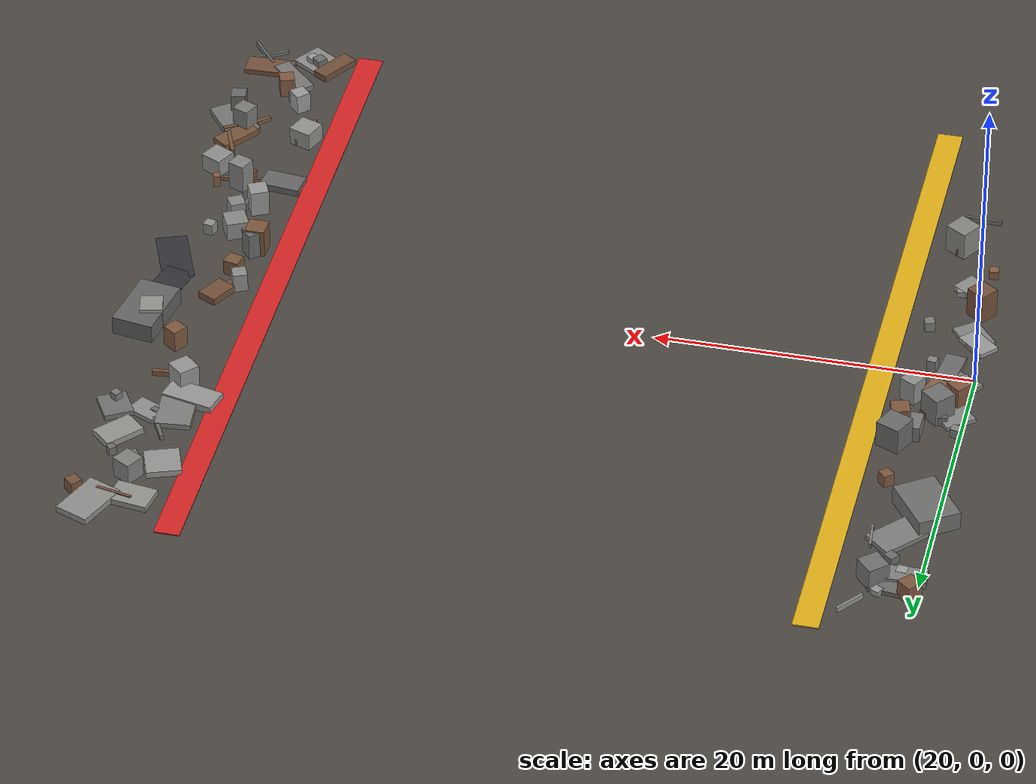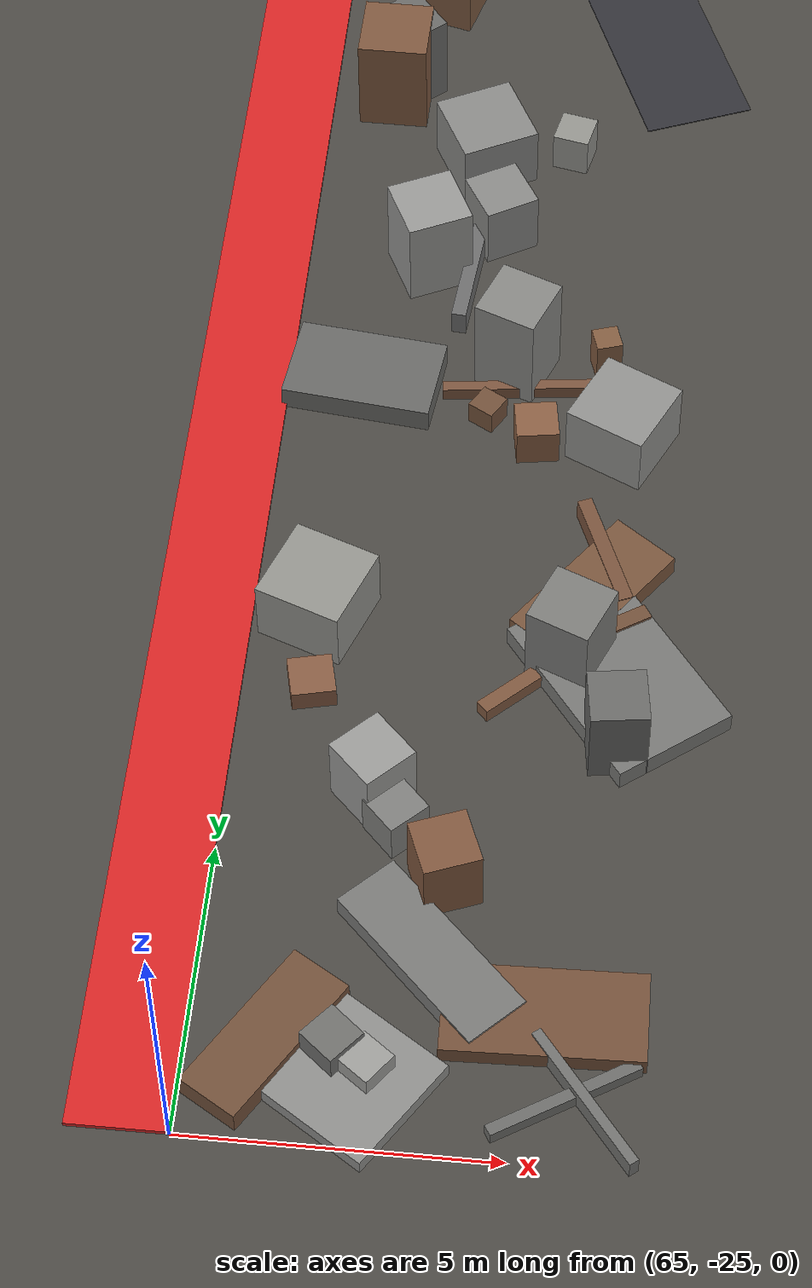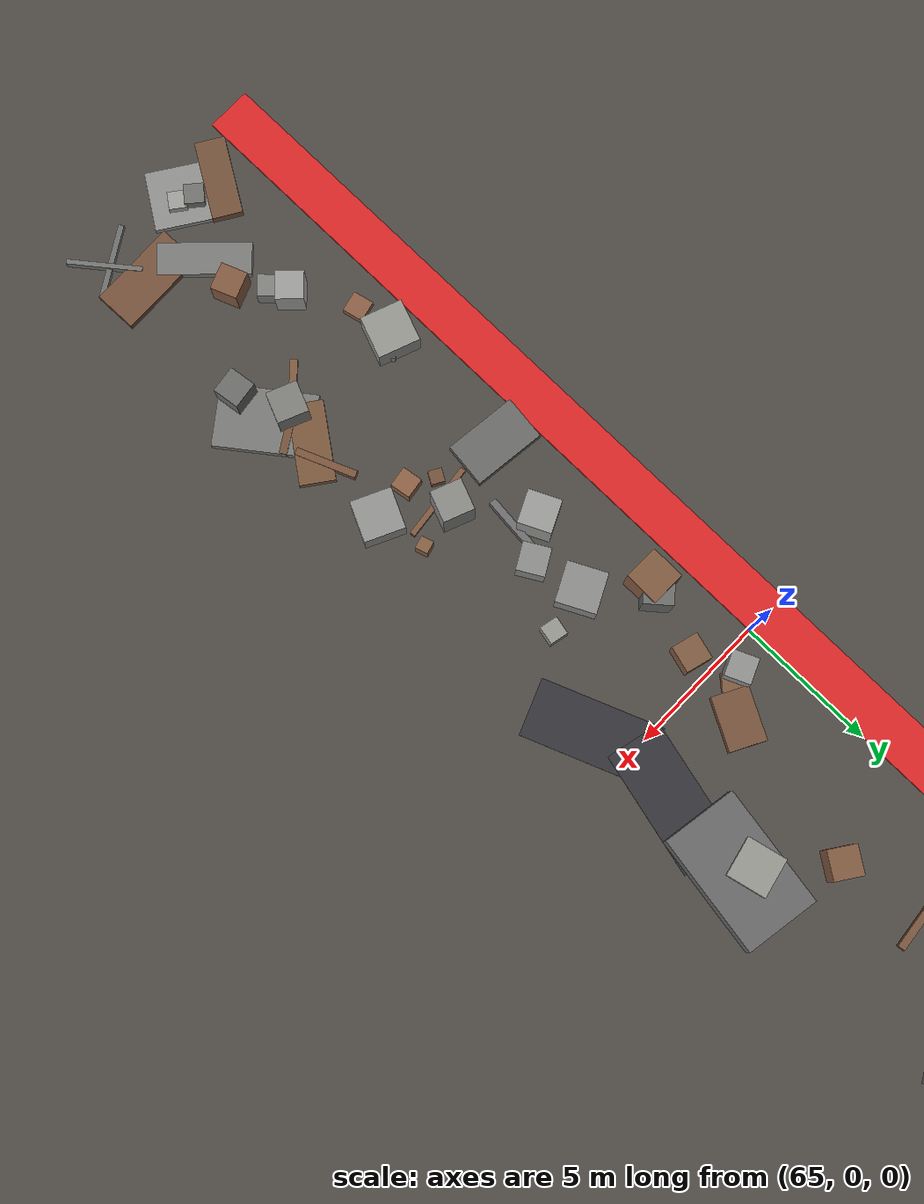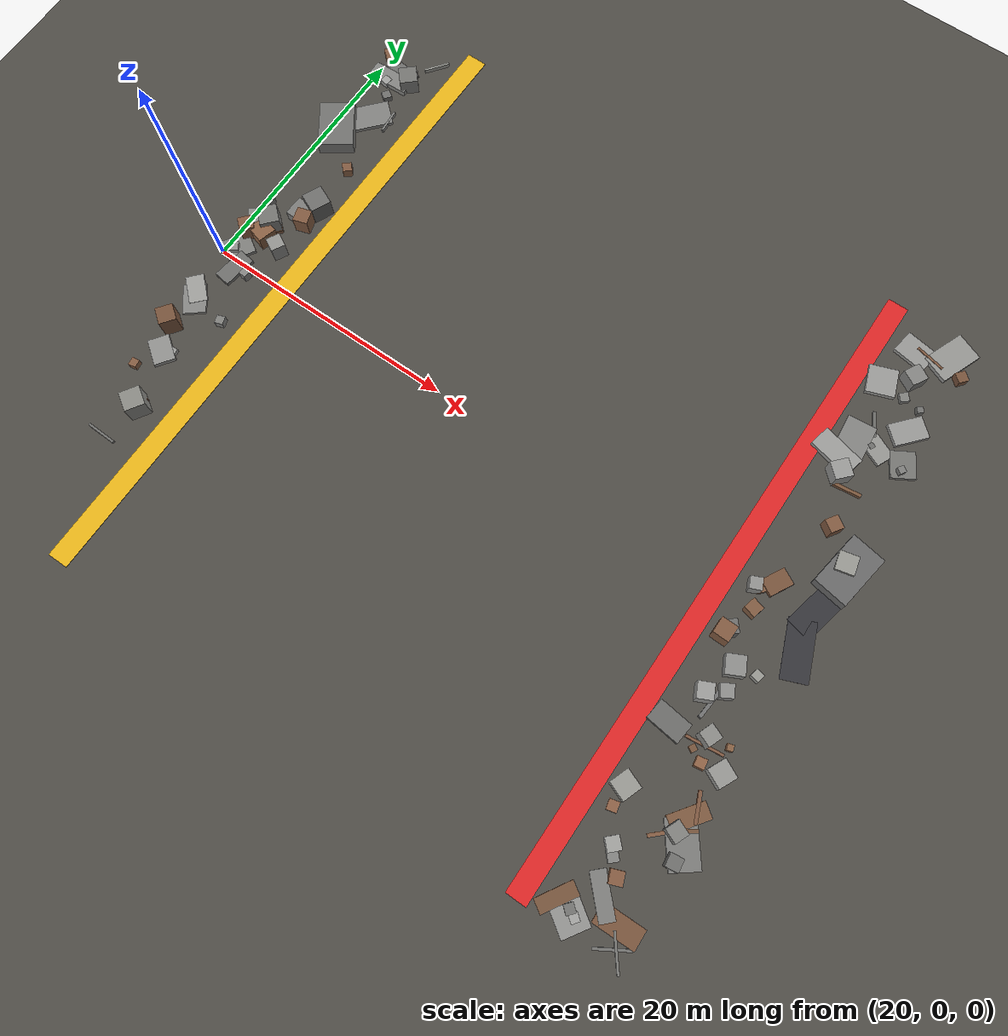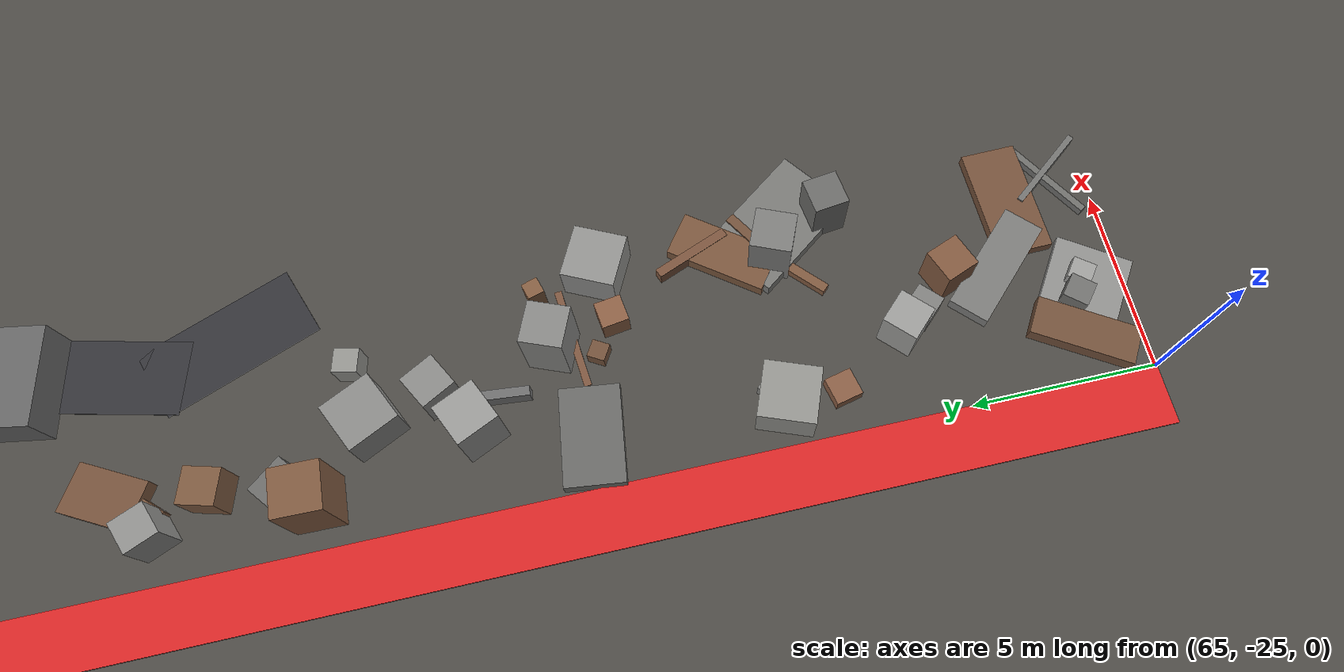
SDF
<sdf version="1.6">
 <world name="navitas_arena">
  <model name="ground_plane">
   <static>true</static>
   <link name="link">
    <collision name="collision">
     <geometry><plane><normal>0 0 1</normal><size>400 400</size></plane></geometry>
     <surface><friction><ode><mu>0.800</mu><mu2>0.800</mu2></ode></friction></surface>
    </collision>
    <visual name="visual">
     <cast_shadows>false</cast_shadows>
     <geometry><plane><normal>0 0 1</normal><size>400 400</size></plane></geometry>
     <material><ambient>0.300 0.290 0.270 1</ambient><diffuse>0.300 0.290 0.270 1</diffuse></material>
    </visual>
   </link>
  </model>
  <model name="brd_orta_E">
   <static>true</static>
   <pose>25.800 0.000 0.040 0 0 0.000</pose>
   <link name="link">
    <collision name="col"><geometry><box><size>1.600 50.000 0.080</size></box></geometry></collision>
    <visual name="vis">
     <geometry><box><size>1.600 50.000 0.080</size></box></geometry>
     <material><ambient>0.90 0.70 0.10 1</ambient><diffuse>0.90 0.70 0.10 1</diffuse></material>
    </visual>
   </link>
  </model>
  <model name="blk_orta_3_2_4">
   <static>true</static>
   <pose>20.731 13.316 0.600 0 0 2.175</pose>
   <link name="link">
    <collision name="col"><geometry><box><size>3.786 2.715 1.200</size></box></geometry></collision>
    <visual name="vis">
     <geometry><box><size>3.786 2.715 1.200</size></box></geometry>
     <material><ambient>0.44 0.44 0.43 1</ambient><diffuse>0.44 0.44 0.43 1</diffuse></material>
    </visual>
   </link>
  </model>
  <model name="deb_orta_2">
   <static>true</static>
   <pose>23.109 5.786 0.507 0 0 1.541</pose>
   <link name="link">
    <collision name="col"><geometry><box><size>1.554 1.554 1.015</size></box></geometry></collision>
    <visual name="vis">
     <geometry><box><size>1.554 1.554 1.015</size></box></geometry>
     <material><ambient>0.48 0.48 0.47 1</ambient><diffuse>0.48 0.48 0.47 1</diffuse></material>
    </visual>
   </link>
  </model>
  <model name="deb_orta_3">
   <static>true</static>
   <pose>23.013 -13.170 0.921 0 0 1.003</pose>
   <link name="link">
    <collision name="col"><geometry><box><size>1.516 1.516 1.842</size></box></geometry></collision>
    <visual name="vis">
     <geometry><box><size>1.516 1.516 1.842</size></box></geometry>
     <material><ambient>0.53 0.53 0.51 1</ambient><diffuse>0.53 0.53 0.51 1</diffuse></material>
    </visual>
   </link>
  </model>
  <model name="deb_orta_9">
   <static>true</static>
   <pose>21.147 19.111 0.240 0 0 1.437</pose>
   <link name="link">
    <collision name="col"><geometry><box><size>0.652 0.652 0.481</size></box></geometry></collision>
    <visual name="vis">
     <geometry><box><size>0.652 0.652 0.481</size></box></geometry>
     <material><ambient>0.62 0.62 0.61 1</ambient><diffuse>0.62 0.62 0.61 1</diffuse></material>
    </visual>
   </link>
  </model>
  <model name="deb_orta_11">
   <static>true</static>
   <pose>20.646 2.398 0.797 0 0 2.435</pose>
   <link name="link">
    <collision name="col"><geometry><box><size>1.085 1.085 1.594</size></box></geometry></collision>
    <visual name="vis">
     <geometry><box><size>1.085 1.085 1.594</size></box></geometry>
     <material><ambient>0.51 0.35 0.25 1</ambient><diffuse>0.51 0.35 0.25 1</diffuse></material>
    </visual>
   </link>
  </model>
  <model name="deb_orta_24">
   <static>true</static>
   <pose>21.686 3.828 0.906 0 0 0.840</pose>
   <link name="link">
    <collision name="col"><geometry><box><size>1.466 1.466 1.813</size></box></geometry></collision>
    <visual name="vis">
     <geometry><box><size>1.466 1.466 1.813</size></box></geometry>
     <material><ambient>0.45 0.45 0.44 1</ambient><diffuse>0.45 0.45 0.44 1</diffuse></material>
    </visual>
   </link>
  </model>
  <model name="deb_orta_26">
   <static>true</static>
   <pose>22.035 15.796 0.152 0 0 0.841</pose>
   <link name="link">
    <collision name="col"><geometry><box><size>3.159 2.038 0.305</size></box></geometry></collision>
    <visual name="vis">
     <geometry><box><size>3.159 2.038 0.305</size></box></geometry>
     <material><ambient>0.50 0.50 0.49 1</ambient><diffuse>0.50 0.50 0.49 1</diffuse></material>
    </visual>
   </link>
  </model>
  <model name="deb_orta_30">
   <static>true</static>
   <pose>21.866 2.751 0.697 0 0 2.855</pose>
   <link name="link">
    <collision name="col"><geometry><box><size>1.441 1.441 1.394</size></box></geometry></collision>
    <visual name="vis">
     <geometry><box><size>1.441 1.441 1.394</size></box></geometry>
     <material><ambient>0.54 0.38 0.27 1</ambient><diffuse>0.54 0.38 0.27 1</diffuse></material>
    </visual>
   </link>
  </model>
  <model name="deb_orta_39">
   <static>true</static>
   <pose>22.169 -16.232 0.156 0 0 3.118</pose>
   <link name="link">
    <collision name="col"><geometry><box><size>2.276 0.176 0.313</size></box></geometry></collision>
    <visual name="vis">
     <geometry><box><size>2.276 0.176 0.313</size></box></geometry>
     <material><ambient>0.44 0.44 0.43 1</ambient><diffuse>0.44 0.44 0.43 1</diffuse></material>
    </visual>
   </link>
  </model>
  <model name="deb_orta_40">
   <static>true</static>
   <pose>21.370 4.345 0.272 0 0 0.246</pose>
   <link name="link">
    <collision name="col"><geometry><box><size>0.687 0.687 0.543</size></box></geometry></collision>
    <visual name="vis">
     <geometry><box><size>0.687 0.687 0.543</size></box></geometry>
     <material><ambient>0.41 0.41 0.40 1</ambient><diffuse>0.41 0.41 0.40 1</diffuse></material>
    </visual>
   </link>
  </model>
  <model name="deb_orta_59">
   <static>true</static>
   <pose>22.299 21.077 0.183 0 0 1.073</pose>
   <link name="link">
    <collision name="col"><geometry><box><size>0.563 0.563 0.366</size></box></geometry></collision>
    <visual name="vis">
     <geometry><box><size>0.563 0.563 0.366</size></box></geometry>
     <material><ambient>0.60 0.60 0.59 1</ambient><diffuse>0.60 0.60 0.59 1</diffuse></material>
    </visual>
   </link>
  </model>
  <model name="deb_orta_62">
   <static>true</static>
   <pose>20.760 -6.800 0.960 0 0 2.503</pose>
   <link name="link">
    <collision name="col"><geometry><box><size>1.315 1.315 1.919</size></box></geometry></collision>
    <visual name="vis">
     <geometry><box><size>1.315 1.315 1.919</size></box></geometry>
     <material><ambient>0.46 0.32 0.23 1</ambient><diffuse>0.46 0.32 0.23 1</diffuse></material>
    </visual>
   </link>
  </model>
  <model name="deb_orta_70">
   <static>true</static>
   <pose>20.785 0.955 0.149 0 0 1.006</pose>
   <link name="link">
    <collision name="col"><geometry><box><size>2.122 1.785 0.298</size></box></geometry></collision>
    <visual name="vis">
     <geometry><box><size>2.122 1.785 0.298</size></box></geometry>
     <material><ambient>0.49 0.49 0.48 1</ambient><diffuse>0.49 0.49 0.48 1</diffuse></material>
    </visual>
   </link>
  </model>
  <model name="deb_orta_78">
   <static>true</static>
   <pose>20.387 21.003 0.596 0 0 2.450</pose>
   <link name="link">
    <collision name="col"><geometry><box><size>1.042 1.042 1.192</size></box></geometry></collision>
    <visual name="vis">
     <geometry><box><size>1.042 1.042 1.192</size></box></geometry>
     <material><ambient>0.50 0.35 0.25 1</ambient><diffuse>0.50 0.35 0.25 1</diffuse></material>
    </visual>
   </link>
  </model>
  <model name="deb_orta_82">
   <static>true</static>
   <pose>23.659 22.467 0.172 0 0 0.914</pose>
   <link name="link">
    <collision name="col"><geometry><box><size>2.012 0.158 0.345</size></box></geometry></collision>
    <visual name="vis">
     <geometry><box><size>2.012 0.158 0.345</size></box></geometry>
     <material><ambient>0.58 0.58 0.56 1</ambient><diffuse>0.58 0.58 0.56 1</diffuse></material>
    </visual>
   </link>
  </model>
  <model name="deb_orta_88">
   <static>true</static>
   <pose>23.746 5.304 0.779 0 0 1.870</pose>
   <link name="link">
    <collision name="col"><geometry><box><size>1.131 1.131 1.558</size></box></geometry></collision>
    <visual name="vis">
     <geometry><box><size>1.131 1.131 1.558</size></box></geometry>
     <material><ambient>0.50 0.35 0.25 1</ambient><diffuse>0.50 0.35 0.25 1</diffuse></material>
    </visual>
   </link>
  </model>
  <model name="deb_orta_90">
   <static>true</static>
   <pose>23.808 6.964 0.861 0 0 2.720</pose>
   <link name="link">
    <collision name="col"><geometry><box><size>1.594 1.594 1.721</size></box></geometry></collision>
    <visual name="vis">
     <geometry><box><size>1.594 1.594 1.721</size></box></geometry>
     <material><ambient>0.43 0.43 0.42 1</ambient><diffuse>0.43 0.43 0.42 1</diffuse></material>
    </visual>
   </link>
  </model>
  <model name="deb_orta_91">
   <static>true</static>
   <pose>23.073 -12.832 0.253 0 0 0.386</pose>
   <link name="link">
    <collision name="col"><geometry><box><size>0.725 0.725 0.507</size></box></geometry></collision>
    <visual name="vis">
     <geometry><box><size>0.725 0.725 0.507</size></box></geometry>
     <material><ambient>0.47 0.33 0.24 1</ambient><diffuse>0.47 0.33 0.24 1</diffuse></material>
    </visual>
   </link>
  </model>
  <model name="deb_orta_96">
   <static>true</static>
   <pose>21.542 -8.876 0.193 0 0 2.518</pose>
   <link name="link">
    <collision name="col"><geometry><box><size>2.052 1.584 0.385</size></box></geometry></collision>
    <visual name="vis">
     <geometry><box><size>2.052 1.584 0.385</size></box></geometry>
     <material><ambient>0.56 0.56 0.55 1</ambient><diffuse>0.56 0.56 0.55 1</diffuse></material>
    </visual>
   </link>
  </model>
  <model name="deb_orta_102">
   <static>true</static>
   <pose>21.289 19.501 0.235 0 0 0.040</pose>
   <link name="link">
    <collision name="col"><geometry><box><size>3.375 1.295 0.470</size></box></geometry></collision>
    <visual name="vis">
     <geometry><box><size>3.375 1.295 0.470</size></box></geometry>
     <material><ambient>0.51 0.51 0.50 1</ambient><diffuse>0.51 0.51 0.50 1</diffuse></material>
    </visual>
   </link>
  </model>
  <model name="deb_orta_105">
   <static>true</static>
   <pose>20.610 0.651 0.307 0 0 2.189</pose>
   <link name="link">
    <collision name="col"><geometry><box><size>0.738 0.738 0.615</size></box></geometry></collision>
    <visual name="vis">
     <geometry><box><size>0.738 0.738 0.615</size></box></geometry>
     <material><ambient>0.56 0.56 0.55 1</ambient><diffuse>0.56 0.56 0.55 1</diffuse></material>
    </visual>
   </link>
  </model>
  <model name="deb_orta_130">
   <static>true</static>
   <pose>20.641 -10.792 0.278 0 0 0.138</pose>
   <link name="link">
    <collision name="col"><geometry><box><size>0.603 0.603 0.555</size></box></geometry></collision>
    <visual name="vis">
     <geometry><box><size>0.603 0.603 0.555</size></box></geometry>
     <material><ambient>0.52 0.36 0.26 1</ambient><diffuse>0.52 0.36 0.26 1</diffuse></material>
    </visual>
   </link>
  </model>
  <model name="deb_orta_131">
   <static>true</static>
   <pose>23.665 -4.650 0.327 0 0 1.894</pose>
   <link name="link">
    <collision name="col"><geometry><box><size>0.639 0.639 0.653</size></box></geometry></collision>
    <visual name="vis">
     <geometry><box><size>0.639 0.639 0.653</size></box></geometry>
     <material><ambient>0.49 0.49 0.48 1</ambient><diffuse>0.49 0.49 0.48 1</diffuse></material>
    </visual>
   </link>
  </model>
  <model name="deb_orta_161">
   <static>true</static>
   <pose>21.986 17.995 0.254 0 0 2.544</pose>
   <link name="link">
    <collision name="col"><geometry><box><size>0.662 0.662 0.508</size></box></geometry></collision>
    <visual name="vis">
     <geometry><box><size>0.662 0.662 0.508</size></box></geometry>
     <material><ambient>0.43 0.43 0.42 1</ambient><diffuse>0.43 0.43 0.42 1</diffuse></material>
    </visual>
   </link>
  </model>
  <model name="deb_orta_162">
   <static>true</static>
   <pose>21.604 20.492 0.145 0 0 3.014</pose>
   <link name="link">
    <collision name="col"><geometry><box><size>2.519 1.324 0.290</size></box></geometry></collision>
    <visual name="vis">
     <geometry><box><size>2.519 1.324 0.290</size></box></geometry>
     <material><ambient>0.43 0.43 0.42 1</ambient><diffuse>0.43 0.43 0.42 1</diffuse></material>
    </visual>
   </link>
  </model>
  <model name="deb_orta_174">
   <static>true</static>
   <pose>22.783 -0.646 0.404 0 0 1.413</pose>
   <link name="link">
    <collision name="col"><geometry><box><size>0.576 0.576 0.809</size></box></geometry></collision>
    <visual name="vis">
     <geometry><box><size>0.576 0.576 0.809</size></box></geometry>
     <material><ambient>0.52 0.52 0.51 1</ambient><diffuse>0.52 0.52 0.51 1</diffuse></material>
    </visual>
   </link>
  </model>
  <model name="deb_orta_176">
   <static>true</static>
   <pose>20.294 5.457 0.298 0 0 2.817</pose>
   <link name="link">
    <collision name="col"><geometry><box><size>0.553 0.553 0.596</size></box></geometry></collision>
    <visual name="vis">
     <geometry><box><size>0.553 0.553 0.596</size></box></geometry>
     <material><ambient>0.52 0.52 0.51 1</ambient><diffuse>0.52 0.52 0.51 1</diffuse></material>
    </visual>
   </link>
  </model>
  <model name="deb_orta_207">
   <static>true</static>
   <pose>20.416 -3.585 0.136 0 0 2.400</pose>
   <link name="link">
    <collision name="col"><geometry><box><size>2.192 1.358 0.273</size></box></geometry></collision>
    <visual name="vis">
     <geometry><box><size>2.192 1.358 0.273</size></box></geometry>
     <material><ambient>0.61 0.61 0.60 1</ambient><diffuse>0.61 0.61 0.60 1</diffuse></material>
    </visual>
   </link>
  </model>
  <model name="deb_orta_210">
   <static>true</static>
   <pose>23.511 16.185 0.170 0 0 1.665</pose>
   <link name="link">
    <collision name="col"><geometry><box><size>1.862 0.153 0.341</size></box></geometry></collision>
    <visual name="vis">
     <geometry><box><size>1.862 0.153 0.341</size></box></geometry>
     <material><ambient>0.50 0.50 0.49 1</ambient><diffuse>0.50 0.50 0.49 1</diffuse></material>
    </visual>
   </link>
  </model>
  <model name="deb_orta_211">
   <static>true</static>
   <pose>21.660 -0.628 0.169 0 0 1.436</pose>
   <link name="link">
    <collision name="col"><geometry><box><size>2.618 1.287 0.338</size></box></geometry></collision>
    <visual name="vis">
     <geometry><box><size>2.618 1.287 0.338</size></box></geometry>
     <material><ambient>0.43 0.43 0.42 1</ambient><diffuse>0.43 0.43 0.42 1</diffuse></material>
    </visual>
   </link>
  </model>
  <model name="deb_orta_231">
   <static>true</static>
   <pose>20.749 3.726 0.128 0 0 2.243</pose>
   <link name="link">
    <collision name="col"><geometry><box><size>2.074 2.027 0.255</size></box></geometry></collision>
    <visual name="vis">
     <geometry><box><size>2.074 2.027 0.255</size></box></geometry>
     <material><ambient>0.53 0.53 0.52 1</ambient><diffuse>0.53 0.53 0.52 1</diffuse></material>
    </visual>
   </link>
  </model>
  <model name="deb_orta_242">
   <static>true</static>
   <pose>22.192 -8.579 0.192 0 0 0.055</pose>
   <link name="link">
    <collision name="col"><geometry><box><size>0.725 0.725 0.385</size></box></geometry></collision>
    <visual name="vis">
     <geometry><box><size>0.725 0.725 0.385</size></box></geometry>
     <material><ambient>0.59 0.59 0.58 1</ambient><diffuse>0.59 0.59 0.58 1</diffuse></material>
    </visual>
   </link>
  </model>
  <model name="deb_orta_245">
   <static>true</static>
   <pose>23.585 10.851 0.402 0 0 2.293</pose>
   <link name="link">
    <collision name="col"><geometry><box><size>0.711 0.711 0.804</size></box></geometry></collision>
    <visual name="vis">
     <geometry><box><size>0.711 0.711 0.804</size></box></geometry>
     <material><ambient>0.50 0.35 0.25 1</ambient><diffuse>0.50 0.35 0.25 1</diffuse></material>
    </visual>
   </link>
  </model>
  <model name="deb_orta_256">
   <static>true</static>
   <pose>22.751 19.952 0.712 0 0 2.302</pose>
   <link name="link">
    <collision name="col"><geometry><box><size>1.397 1.397 1.423</size></box></geometry></collision>
    <visual name="vis">
     <geometry><box><size>1.397 1.397 1.423</size></box></geometry>
     <material><ambient>0.45 0.45 0.44 1</ambient><diffuse>0.45 0.45 0.44 1</diffuse></material>
    </visual>
   </link>
  </model>
  <model name="deb_orta_260">
   <static>true</static>
   <pose>23.490 2.392 0.778 0 0 2.638</pose>
   <link name="link">
    <collision name="col"><geometry><box><size>1.097 1.097 1.556</size></box></geometry></collision>
    <visual name="vis">
     <geometry><box><size>1.097 1.097 1.556</size></box></geometry>
     <material><ambient>0.57 0.57 0.56 1</ambient><diffuse>0.57 0.57 0.56 1</diffuse></material>
    </visual>
   </link>
  </model>
  <model name="deb_orta_264">
   <static>true</static>
   <pose>22.355 3.839 0.195 0 0 0.880</pose>
   <link name="link">
    <collision name="col"><geometry><box><size>0.585 0.585 0.389</size></box></geometry></collision>
    <visual name="vis">
     <geometry><box><size>0.585 0.585 0.389</size></box></geometry>
     <material><ambient>0.45 0.32 0.23 1</ambient><diffuse>0.45 0.32 0.23 1</diffuse></material>
    </visual>
   </link>
  </model>
  <model name="deb_orta_270">
   <static>true</static>
   <pose>20.811 -4.282 0.122 0 0 2.243</pose>
   <link name="link">
    <collision name="col"><geometry><box><size>2.362 1.726 0.244</size></box></geometry></collision>
    <visual name="vis">
     <geometry><box><size>2.362 1.726 0.244</size></box></geometry>
     <material><ambient>0.52 0.52 0.51 1</ambient><diffuse>0.52 0.52 0.51 1</diffuse></material>
    </visual>
   </link>
  </model>
  <model name="brd_zor_W">
   <static>true</static>
   <pose>64.200 0.000 0.040 0 0 0.000</pose>
   <link name="link">
    <collision name="col"><geometry><box><size>1.600 50.000 0.080</size></box></geometry></collision>
    <visual name="vis">
     <geometry><box><size>1.600 50.000 0.080</size></box></geometry>
     <material><ambient>0.85 0.15 0.15 1</ambient><diffuse>0.85 0.15 0.15 1</diffuse></material>
    </visual>
   </link>
  </model>
  <model name="road_zor_1_10">
   <static>true</static>
   <pose>70.980 -1.417 0.040 0 0 1.949</pose>
   <link name="link">
    <collision name="col"><geometry><box><size>4.308 2.000 0.020</size></box></geometry></collision>
    <visual name="vis">
     <geometry><box><size>4.308 2.000 0.020</size></box></geometry>
     <material><ambient>0.20 0.20 0.22 1</ambient><diffuse>0.20 0.20 0.22 1</diffuse></material>
    </visual>
   </link>
  </model>
  <model name="road_zor_1_11">
   <static>true</static>
   <pose>70.768 1.917 0.040 0 0 1.337</pose>
   <link name="link">
    <collision name="col"><geometry><box><size>4.498 2.000 0.020</size></box></geometry></collision>
    <visual name="vis">
     <geometry><box><size>4.498 2.000 0.020</size></box></geometry>
     <material><ambient>0.20 0.20 0.22 1</ambient><diffuse>0.20 0.20 0.22 1</diffuse></material>
    </visual>
   </link>
  </model>
  <model name="blk_zor_1_1_1">
   <static>true</static>
   <pose>70.590 5.225 0.726 0 0 1.798</pose>
   <link name="link">
    <collision name="col"><geometry><box><size>1.407 1.407 1.451</size></box></geometry></collision>
    <visual name="vis">
     <geometry><box><size>1.407 1.407 1.451</size></box></geometry>
     <material><ambient>0.58 0.58 0.56 1</ambient><diffuse>0.58 0.58 0.56 1</diffuse></material>
    </visual>
   </link>
  </model>
  <model name="blk_zor_1_1_3">
   <static>true</static>
   <pose>71.003 4.968 0.600 0 0 1.409</pose>
   <link name="link">
    <collision name="col"><geometry><box><size>4.298 2.662 1.200</size></box></geometry></collision>
    <visual name="vis">
     <geometry><box><size>4.298 2.662 1.200</size></box></geometry>
     <material><ambient>0.40 0.40 0.40 1</ambient><diffuse>0.40 0.40 0.40 1</diffuse></material>
    </visual>
   </link>
  </model>
  <model name="deb_zor_7">
   <static>true</static>
   <pose>66.086 -15.337 0.589 0 0 2.778</pose>
   <link name="link">
    <collision name="col"><geometry><box><size>1.497 1.497 1.179</size></box></geometry></collision>
    <visual name="vis">
     <geometry><box><size>1.497 1.497 1.179</size></box></geometry>
     <material><ambient>0.58 0.58 0.56 1</ambient><diffuse>0.58 0.58 0.56 1</diffuse></material>
    </visual>
   </link>
  </model>
  <model name="deb_zor_11">
   <static>true</static>
   <pose>70.547 -14.654 0.191 0 0 0.937</pose>
   <link name="link">
    <collision name="col"><geometry><box><size>2.759 1.226 0.383</size></box></geometry></collision>
    <visual name="vis">
     <geometry><box><size>2.759 1.226 0.383</size></box></geometry>
     <material><ambient>0.48 0.34 0.24 1</ambient><diffuse>0.48 0.34 0.24 1</diffuse></material>
    </visual>
   </link>
  </model>
  <model name="deb_zor_14">
   <static>true</static>
   <pose>71.111 -17.549 0.767 0 0 0.135</pose>
   <link name="link">
    <collision name="col"><geometry><box><size>0.949 0.949 1.533</size></box></geometry></collision>
    <visual name="vis">
     <geometry><box><size>0.949 0.949 1.533</size></box></geometry>
     <material><ambient>0.42 0.42 0.41 1</ambient><diffuse>0.42 0.42 0.41 1</diffuse></material>
    </visual>
   </link>
  </model>
  <model name="deb_zor_20">
   <static>true</static>
   <pose>68.488 -10.874 0.224 0 0 1.045</pose>
   <link name="link">
    <collision name="col"><geometry><box><size>0.475 0.475 0.447</size></box></geometry></collision>
    <visual name="vis">
     <geometry><box><size>0.475 0.475 0.447</size></box></geometry>
     <material><ambient>0.45 0.32 0.23 1</ambient><diffuse>0.45 0.32 0.23 1</diffuse></material>
    </visual>
   </link>
  </model>
  <model name="deb_zor_22">
   <static>true</static>
   <pose>66.297 -10.301 0.220 0 0 3.023</pose>
   <link name="link">
    <collision name="col"><geometry><box><size>2.585 1.580 0.439</size></box></geometry></collision>
    <visual name="vis">
     <geometry><box><size>2.585 1.580 0.439</size></box></geometry>
     <material><ambient>0.41 0.41 0.40 1</ambient><diffuse>0.41 0.41 0.40 1</diffuse></material>
    </visual>
   </link>
  </model>
  <model name="deb_zor_23">
   <static>true</static>
   <pose>70.435 -9.519 0.385 0 0 0.300</pose>
   <link name="link">
    <collision name="col"><geometry><box><size>0.452 0.452 0.770</size></box></geometry></collision>
    <visual name="vis">
     <geometry><box><size>0.452 0.452 0.770</size></box></geometry>
     <material><ambient>0.52 0.37 0.26 1</ambient><diffuse>0.52 0.37 0.26 1</diffuse></material>
    </visual>
   </link>
  </model>
  <model name="deb_zor_32">
   <static>true</static>
   <pose>67.250 -23.486 0.372 0 0 2.438</pose>
   <link name="link">
    <collision name="col"><geometry><box><size>0.688 0.688 0.743</size></box></geometry></collision>
    <visual name="vis">
     <geometry><box><size>0.688 0.688 0.743</size></box></geometry>
     <material><ambient>0.44 0.44 0.43 1</ambient><diffuse>0.44 0.44 0.43 1</diffuse></material>
    </visual>
   </link>
  </model>
  <model name="deb_zor_38">
   <static>true</static>
   <pose>66.984 -0.841 0.515 0 0 2.880</pose>
   <link name="link">
    <collision name="col"><geometry><box><size>0.952 0.952 1.030</size></box></geometry></collision>
    <visual name="vis">
     <geometry><box><size>0.952 0.952 1.030</size></box></geometry>
     <material><ambient>0.49 0.35 0.25 1</ambient><diffuse>0.49 0.35 0.25 1</diffuse></material>
    </visual>
   </link>
  </model>
  <model name="deb_zor_43">
   <static>true</static>
   <pose>68.349 -6.596 0.598 0 0 2.090</pose>
   <link name="link">
    <collision name="col"><geometry><box><size>0.980 0.980 1.197</size></box></geometry></collision>
    <visual name="vis">
     <geometry><box><size>0.980 0.980 1.197</size></box></geometry>
     <material><ambient>0.54 0.54 0.53 1</ambient><diffuse>0.54 0.54 0.53 1</diffuse></material>
    </visual>
   </link>
  </model>
  <model name="deb_zor_44">
   <static>true</static>
   <pose>66.672 13.908 0.181 0 0 1.665</pose>
   <link name="link">
    <collision name="col"><geometry><box><size>2.664 2.198 0.361</size></box></geometry></collision>
    <visual name="vis">
     <geometry><box><size>2.664 2.198 0.361</size></box></geometry>
     <material><ambient>0.50 0.50 0.49 1</ambient><diffuse>0.50 0.50 0.49 1</diffuse></material>
    </visual>
   </link>
  </model>
  <model name="deb_zor_50">
   <static>true</static>
   <pose>69.479 18.273 0.272 0 0 2.228</pose>
   <link name="link">
    <collision name="col"><geometry><box><size>0.476 0.476 0.545</size></box></geometry></collision>
    <visual name="vis">
     <geometry><box><size>0.476 0.476 0.545</size></box></geometry>
     <material><ambient>0.43 0.43 0.42 1</ambient><diffuse>0.43 0.43 0.42 1</diffuse></material>
    </visual>
   </link>
  </model>
  <model name="deb_zor_52">
   <static>true</static>
   <pose>67.547 -23.893 0.138 0 0 2.557</pose>
   <link name="link">
    <collision name="col"><geometry><box><size>2.136 2.078 0.277</size></box></geometry></collision>
    <visual name="vis">
     <geometry><box><size>2.136 2.078 0.277</size></box></geometry>
     <material><ambient>0.56 0.56 0.55 1</ambient><diffuse>0.56 0.56 0.55 1</diffuse></material>
    </visual>
   </link>
  </model>
  <model name="deb_zor_60">
   <static>true</static>
   <pose>68.073 18.554 0.217 0 0 2.259</pose>
   <link name="link">
    <collision name="col"><geometry><box><size>0.676 0.676 0.434</size></box></geometry></collision>
    <visual name="vis">
     <geometry><box><size>0.676 0.676 0.434</size></box></geometry>
     <material><ambient>0.49 0.49 0.48 1</ambient><diffuse>0.49 0.49 0.48 1</diffuse></material>
    </visual>
   </link>
  </model>
  <model name="deb_zor_62">
   <static>true</static>
   <pose>66.143 18.781 0.205 0 0 1.920</pose>
   <link name="link">
    <collision name="col"><geometry><box><size>2.160 2.159 0.410</size></box></geometry></collision>
    <visual name="vis">
     <geometry><box><size>2.160 2.159 0.410</size></box></geometry>
     <material><ambient>0.59 0.59 0.58 1</ambient><diffuse>0.59 0.59 0.58 1</diffuse></material>
    </visual>
   </link>
  </model>
  <model name="deb_zor_68">
   <static>true</static>
   <pose>66.331 -2.984 0.871 0 0 0.693</pose>
   <link name="link">
    <collision name="col"><geometry><box><size>1.012 1.012 1.742</size></box></geometry></collision>
    <visual name="vis">
     <geometry><box><size>1.012 1.012 1.742</size></box></geometry>
     <material><ambient>0.42 0.42 0.41 1</ambient><diffuse>0.42 0.42 0.41 1</diffuse></material>
    </visual>
   </link>
  </model>
  <model name="deb_zor_69">
   <static>true</static>
   <pose>67.785 -23.772 0.313 0 0 0.921</pose>
   <link name="link">
    <collision name="col"><geometry><box><size>0.620 0.620 0.626</size></box></geometry></collision>
    <visual name="vis">
     <geometry><box><size>0.620 0.620 0.626</size></box></geometry>
     <material><ambient>0.62 0.62 0.61 1</ambient><diffuse>0.62 0.62 0.61 1</diffuse></material>
    </visual>
   </link>
  </model>
  <model name="deb_zor_70">
   <static>true</static>
   <pose>71.075 -16.285 0.190 0 0 2.217</pose>
   <link name="link">
    <collision name="col"><geometry><box><size>3.339 2.143 0.380</size></box></geometry></collision>
    <visual name="vis">
     <geometry><box><size>3.339 2.143 0.380</size></box></geometry>
     <material><ambient>0.47 0.47 0.46 1</ambient><diffuse>0.47 0.47 0.46 1</diffuse></material>
    </visual>
   </link>
  </model>
  <model name="deb_zor_78">
   <static>true</static>
   <pose>66.004 -15.265 0.218 0 0 0.679</pose>
   <link name="link">
    <collision name="col"><geometry><box><size>1.675 0.238 0.437</size></box></geometry></collision>
    <visual name="vis">
     <geometry><box><size>1.675 0.238 0.437</size></box></geometry>
     <material><ambient>0.50 0.50 0.49 1</ambient><diffuse>0.50 0.50 0.49 1</diffuse></material>
    </visual>
   </link>
  </model>
  <model name="deb_zor_85">
   <static>true</static>
   <pose>69.564 16.443 0.207 0 0 0.848</pose>
   <link name="link">
    <collision name="col"><geometry><box><size>2.591 1.676 0.415</size></box></geometry></collision>
    <visual name="vis">
     <geometry><box><size>2.591 1.676 0.415</size></box></geometry>
     <material><ambient>0.58 0.58 0.57 1</ambient><diffuse>0.58 0.58 0.57 1</diffuse></material>
    </visual>
   </link>
  </model>
  <model name="deb_zor_93">
   <static>true</static>
   <pose>67.782 -19.394 0.400 0 0 0.757</pose>
   <link name="link">
    <collision name="col"><geometry><box><size>0.751 0.751 0.801</size></box></geometry></collision>
    <visual name="vis">
     <geometry><box><size>0.751 0.751 0.801</size></box></geometry>
     <material><ambient>0.50 0.50 0.49 1</ambient><diffuse>0.50 0.50 0.49 1</diffuse></material>
    </visual>
   </link>
  </model>
  <model name="deb_zor_111">
   <static>true</static>
   <pose>67.918 -7.715 0.234 0 0 1.477</pose>
   <link name="link">
    <collision name="col"><geometry><box><size>2.521 0.255 0.468</size></box></geometry></collision>
    <visual name="vis">
     <geometry><box><size>2.521 0.255 0.468</size></box></geometry>
     <material><ambient>0.43 0.43 0.43 1</ambient><diffuse>0.43 0.43 0.43 1</diffuse></material>
    </visual>
   </link>
  </model>
  <model name="deb_zor_121">
   <static>true</static>
   <pose>68.554 -21.717 0.187 0 0 2.346</pose>
   <link name="link">
    <collision name="col"><geometry><box><size>3.214 1.113 0.375</size></box></geometry></collision>
    <visual name="vis">
     <geometry><box><size>3.214 1.113 0.375</size></box></geometry>
     <material><ambient>0.48 0.48 0.47 1</ambient><diffuse>0.48 0.48 0.47 1</diffuse></material>
    </visual>
   </link>
  </model>
  <model name="deb_zor_139">
   <static>true</static>
   <pose>66.145 -16.818 0.200 0 0 1.795</pose>
   <link name="link">
    <collision name="col"><geometry><box><size>0.735 0.735 0.400</size></box></geometry></collision>
    <visual name="vis">
     <geometry><box><size>0.735 0.735 0.400</size></box></geometry>
     <material><ambient>0.54 0.37 0.27 1</ambient><diffuse>0.54 0.37 0.27 1</diffuse></material>
    </visual>
   </link>
  </model>
  <model name="deb_zor_143">
   <static>true</static>
   <pose>67.936 -4.841 0.590 0 0 2.037</pose>
   <link name="link">
    <collision name="col"><geometry><box><size>1.415 1.415 1.180</size></box></geometry></collision>
    <visual name="vis">
     <geometry><box><size>1.415 1.415 1.180</size></box></geometry>
     <material><ambient>0.54 0.54 0.53 1</ambient><diffuse>0.54 0.54 0.53 1</diffuse></material>
    </visual>
   </link>
  </model>
  <model name="deb_zor_150">
   <static>true</static>
   <pose>67.158 -7.489 0.859 0 0 2.015</pose>
   <link name="link">
    <collision name="col"><geometry><box><size>1.169 1.169 1.718</size></box></geometry></collision>
    <visual name="vis">
     <geometry><box><size>1.169 1.169 1.718</size></box></geometry>
     <material><ambient>0.60 0.60 0.59 1</ambient><diffuse>0.60 0.60 0.59 1</diffuse></material>
    </visual>
   </link>
  </model>
  <model name="deb_zor_152">
   <static>true</static>
   <pose>68.177 22.287 0.226 0 0 2.930</pose>
   <link name="link">
    <collision name="col"><geometry><box><size>2.310 0.178 0.452</size></box></geometry></collision>
    <visual name="vis">
     <geometry><box><size>2.310 0.178 0.452</size></box></geometry>
     <material><ambient>0.52 0.36 0.26 1</ambient><diffuse>0.52 0.36 0.26 1</diffuse></material>
    </visual>
   </link>
  </model>
  <model name="deb_zor_155">
   <static>true</static>
   <pose>68.041 10.192 0.169 0 0 0.118</pose>
   <link name="link">
    <collision name="col"><geometry><box><size>2.242 0.253 0.339</size></box></geometry></collision>
    <visual name="vis">
     <geometry><box><size>2.242 0.253 0.339</size></box></geometry>
     <material><ambient>0.47 0.33 0.23 1</ambient><diffuse>0.47 0.33 0.23 1</diffuse></material>
    </visual>
   </link>
  </model>
  <model name="deb_zor_157">
   <static>true</static>
   <pose>70.762 -23.951 0.121 0 0 0.546</pose>
   <link name="link">
    <collision name="col"><geometry><box><size>2.549 0.192 0.243</size></box></geometry></collision>
    <visual name="vis">
     <geometry><box><size>2.549 0.192 0.243</size></box></geometry>
     <material><ambient>0.43 0.43 0.42 1</ambient><diffuse>0.43 0.43 0.42 1</diffuse></material>
    </visual>
   </link>
  </model>
  <model name="deb_zor_162">
   <static>true</static>
   <pose>67.416 1.708 0.229 0 0 1.080</pose>
   <link name="link">
    <collision name="col"><geometry><box><size>1.870 1.303 0.458</size></box></geometry></collision>
    <visual name="vis">
     <geometry><box><size>1.870 1.303 0.458</size></box></geometry>
     <material><ambient>0.46 0.32 0.23 1</ambient><diffuse>0.46 0.32 0.23 1</diffuse></material>
    </visual>
   </link>
  </model>
  <model name="deb_zor_164">
   <static>true</static>
   <pose>69.512 -16.562 0.134 0 0 0.751</pose>
   <link name="link">
    <collision name="col"><geometry><box><size>1.587 0.257 0.268</size></box></geometry></collision>
    <visual name="vis">
     <geometry><box><size>1.587 0.257 0.268</size></box></geometry>
     <material><ambient>0.50 0.35 0.25 1</ambient><diffuse>0.50 0.35 0.25 1</diffuse></material>
    </visual>
   </link>
  </model>
  <model name="deb_zor_165">
   <static>true</static>
   <pose>70.693 -13.824 0.201 0 0 1.959</pose>
   <link name="link">
    <collision name="col"><geometry><box><size>2.159 0.253 0.403</size></box></geometry></collision>
    <visual name="vis">
     <geometry><box><size>2.159 0.253 0.403</size></box></geometry>
     <material><ambient>0.48 0.33 0.24 1</ambient><diffuse>0.48 0.33 0.24 1</diffuse></material>
    </visual>
   </link>
  </model>
  <model name="deb_zor_168">
   <static>true</static>
   <pose>66.982 10.843 0.759 0 0 0.826</pose>
   <link name="link">
    <collision name="col"><geometry><box><size>1.344 1.344 1.518</size></box></geometry></collision>
    <visual name="vis">
     <geometry><box><size>1.344 1.344 1.518</size></box></geometry>
     <material><ambient>0.59 0.59 0.58 1</ambient><diffuse>0.59 0.59 0.58 1</diffuse></material>
    </visual>
   </link>
  </model>
  <model name="deb_zor_172">
   <static>true</static>
   <pose>66.226 -23.392 0.216 0 0 1.018</pose>
   <link name="link">
    <collision name="col"><geometry><box><size>2.765 1.054 0.431</size></box></geometry></collision>
    <visual name="vis">
     <geometry><box><size>2.765 1.054 0.431</size></box></geometry>
     <material><ambient>0.45 0.32 0.23 1</ambient><diffuse>0.45 0.32 0.23 1</diffuse></material>
    </visual>
   </link>
  </model>
  <model name="deb_zor_175">
   <static>true</static>
   <pose>69.039 -10.273 0.123 0 0 0.117</pose>
   <link name="link">
    <collision name="col"><geometry><box><size>2.771 0.196 0.247</size></box></geometry></collision>
    <visual name="vis">
     <geometry><box><size>2.771 0.196 0.247</size></box></geometry>
     <material><ambient>0.49 0.34 0.25 1</ambient><diffuse>0.49 0.34 0.25 1</diffuse></material>
    </visual>
   </link>
  </model>
  <model name="deb_zor_180">
   <static>true</static>
   <pose>70.738 22.102 0.390 0 0 2.439</pose>
   <link name="link">
    <collision name="col"><geometry><box><size>0.788 0.788 0.781</size></box></geometry></collision>
    <visual name="vis">
     <geometry><box><size>0.788 0.788 0.781</size></box></geometry>
     <material><ambient>0.46 0.32 0.23 1</ambient><diffuse>0.46 0.32 0.23 1</diffuse></material>
    </visual>
   </link>
  </model>
  <model name="deb_zor_181">
   <static>true</static>
   <pose>70.828 -11.254 0.582 0 0 2.693</pose>
   <link name="link">
    <collision name="col"><geometry><box><size>1.435 1.435 1.165</size></box></geometry></collision>
    <visual name="vis">
     <geometry><box><size>1.435 1.435 1.165</size></box></geometry>
     <material><ambient>0.57 0.57 0.56 1</ambient><diffuse>0.57 0.57 0.56 1</diffuse></material>
    </visual>
   </link>
  </model>
  <model name="deb_zor_182">
   <static>true</static>
   <pose>67.360 -18.761 0.660 0 0 0.773</pose>
   <link name="link">
    <collision name="col"><geometry><box><size>0.970 0.970 1.319</size></box></geometry></collision>
    <visual name="vis">
     <geometry><box><size>0.970 0.970 1.319</size></box></geometry>
     <material><ambient>0.61 0.61 0.60 1</ambient><diffuse>0.61 0.61 0.60 1</diffuse></material>
    </visual>
   </link>
  </model>
  <model name="deb_zor_199">
   <static>true</static>
   <pose>66.136 -3.382 0.929 0 0 3.126</pose>
   <link name="link">
    <collision name="col"><geometry><box><size>1.244 1.244 1.858</size></box></geometry></collision>
    <visual name="vis">
     <geometry><box><size>1.244 1.244 1.858</size></box></geometry>
     <material><ambient>0.50 0.35 0.25 1</ambient><diffuse>0.50 0.35 0.25 1</diffuse></material>
    </visual>
   </link>
  </model>
  <model name="deb_zor_200">
   <static>true</static>
   <pose>70.455 14.016 0.168 0 0 0.528</pose>
   <link name="link">
    <collision name="col"><geometry><box><size>1.842 2.043 0.336</size></box></geometry></collision>
    <visual name="vis">
     <geometry><box><size>1.842 2.043 0.336</size></box></geometry>
     <material><ambient>0.45 0.45 0.44 1</ambient><diffuse>0.45 0.45 0.44 1</diffuse></material>
    </visual>
   </link>
  </model>
  <model name="deb_zor_206">
   <static>true</static>
   <pose>69.532 -4.543 0.381 0 0 1.354</pose>
   <link name="link">
    <collision name="col"><geometry><box><size>0.649 0.649 0.762</size></box></geometry></collision>
    <visual name="vis">
     <geometry><box><size>0.649 0.649 0.762</size></box></geometry>
     <material><ambient>0.58 0.58 0.56 1</ambient><diffuse>0.58 0.58 0.56 1</diffuse></material>
    </visual>
   </link>
  </model>
  <model name="deb_zor_212">
   <static>true</static>
   <pose>66.698 0.807 0.186 0 0 2.398</pose>
   <link name="link">
    <collision name="col"><geometry><box><size>0.742 0.742 0.371</size></box></geometry></collision>
    <visual name="vis">
     <geometry><box><size>0.742 0.742 0.371</size></box></geometry>
     <material><ambient>0.49 0.35 0.25 1</ambient><diffuse>0.49 0.35 0.25 1</diffuse></material>
    </visual>
   </link>
  </model>
  <model name="deb_zor_249">
   <static>true</static>
   <pose>68.895 -9.743 0.960 0 0 2.761</pose>
   <link name="link">
    <collision name="col"><geometry><box><size>1.107 1.107 1.919</size></box></geometry></collision>
    <visual name="vis">
     <geometry><box><size>1.107 1.107 1.919</size></box></geometry>
     <material><ambient>0.53 0.53 0.52 1</ambient><diffuse>0.53 0.53 0.52 1</diffuse></material>
    </visual>
   </link>
  </model>
  <model name="deb_zor_250">
   <static>true</static>
   <pose>69.360 -11.403 0.358 0 0 1.723</pose>
   <link name="link">
    <collision name="col"><geometry><box><size>0.727 0.727 0.715</size></box></geometry></collision>
    <visual name="vis">
     <geometry><box><size>0.727 0.727 0.715</size></box></geometry>
     <material><ambient>0.55 0.38 0.27 1</ambient><diffuse>0.55 0.38 0.27 1</diffuse></material>
    </visual>
   </link>
  </model>
  <model name="deb_zor_251">
   <static>true</static>
   <pose>66.238 0.625 0.614 0 0 1.983</pose>
   <link name="link">
    <collision name="col"><geometry><box><size>0.908 0.908 1.228</size></box></geometry></collision>
    <visual name="vis">
     <geometry><box><size>0.908 0.908 1.228</size></box></geometry>
     <material><ambient>0.56 0.56 0.55 1</ambient><diffuse>0.56 0.56 0.55 1</diffuse></material>
    </visual>
   </link>
  </model>
  <model name="deb_zor_260">
   <static>true</static>
   <pose>66.110 12.181 0.238 0 0 2.911</pose>
   <link name="link">
    <collision name="col"><geometry><box><size>3.349 1.650 0.476</size></box></geometry></collision>
    <visual name="vis">
     <geometry><box><size>3.349 1.650 0.476</size></box></geometry>
     <material><ambient>0.60 0.60 0.59 1</ambient><diffuse>0.60 0.60 0.59 1</diffuse></material>
    </visual>
   </link>
  </model>
  <model name="deb_zor_265">
   <static>true</static>
   <pose>68.537 7.144 0.693 0 0 2.543</pose>
   <link name="link">
    <collision name="col"><geometry><box><size>1.017 1.017 1.386</size></box></geometry></collision>
    <visual name="vis">
     <geometry><box><size>1.017 1.017 1.386</size></box></geometry>
     <material><ambient>0.50 0.35 0.25 1</ambient><diffuse>0.50 0.35 0.25 1</diffuse></material>
    </visual>
   </link>
  </model>
  <model name="deb_zor_277">
   <static>true</static>
   <pose>67.937 13.999 0.185 0 0 1.064</pose>
   <link name="link">
    <collision name="col"><geometry><box><size>0.402 0.402 0.370</size></box></geometry></collision>
    <visual name="vis">
     <geometry><box><size>0.402 0.402 0.370</size></box></geometry>
     <material><ambient>0.42 0.42 0.41 1</ambient><diffuse>0.42 0.42 0.41 1</diffuse></material>
    </visual>
   </link>
  </model>
  <model name="deb_zor_279">
   <static>true</static>
   <pose>67.897 20.097 0.680 0 0 1.049</pose>
   <link name="link">
    <collision name="col"><geometry><box><size>1.266 1.266 1.360</size></box></geometry></collision>
    <visual name="vis">
     <geometry><box><size>1.266 1.266 1.360</size></box></geometry>
     <material><ambient>0.51 0.51 0.50 1</ambient><diffuse>0.51 0.51 0.50 1</diffuse></material>
    </visual>
   </link>
  </model>
  <model name="deb_zor_285">
   <static>true</static>
   <pose>69.487 23.249 0.207 0 0 1.189</pose>
   <link name="link">
    <collision name="col"><geometry><box><size>3.367 2.197 0.415</size></box></geometry></collision>
    <visual name="vis">
     <geometry><box><size>3.367 2.197 0.415</size></box></geometry>
     <material><ambient>0.57 0.57 0.56 1</ambient><diffuse>0.57 0.57 0.56 1</diffuse></material>
    </visual>
   </link>
  </model>
  <model name="deb_zor_290">
   <static>true</static>
   <pose>70.529 13.447 0.406 0 0 0.959</pose>
   <link name="link">
    <collision name="col"><geometry><box><size>0.526 0.526 0.812</size></box></geometry></collision>
    <visual name="vis">
     <geometry><box><size>0.526 0.526 0.812</size></box></geometry>
     <material><ambient>0.48 0.48 0.47 1</ambient><diffuse>0.48 0.48 0.47 1</diffuse></material>
    </visual>
   </link>
  </model>
  <model name="deb_zor_301">
   <static>true</static>
   <pose>70.370 -22.597 0.164 0 0 0.025</pose>
   <link name="link">
    <collision name="col"><geometry><box><size>3.138 1.514 0.329</size></box></geometry></collision>
    <visual name="vis">
     <geometry><box><size>3.138 1.514 0.329</size></box></geometry>
     <material><ambient>0.46 0.32 0.23 1</ambient><diffuse>0.46 0.32 0.23 1</diffuse></material>
    </visual>
   </link>
  </model>
  <model name="deb_zor_304">
   <static>true</static>
   <pose>67.071 22.209 0.185 0 0 2.993</pose>
   <link name="link">
    <collision name="col"><geometry><box><size>2.550 1.840 0.369</size></box></geometry></collision>
    <visual name="vis">
     <geometry><box><size>2.550 1.840 0.369</size></box></geometry>
     <material><ambient>0.58 0.58 0.57 1</ambient><diffuse>0.58 0.58 0.57 1</diffuse></material>
    </visual>
   </link>
  </model>
  <model name="deb_zor_307">
   <static>true</static>
   <pose>70.267 -15.923 0.833 0 0 1.170</pose>
   <link name="link">
    <collision name="col"><geometry><box><size>1.098 1.098 1.665</size></box></geometry></collision>
    <visual name="vis">
     <geometry><box><size>1.098 1.098 1.665</size></box></geometry>
     <material><ambient>0.49 0.49 0.48 1</ambient><diffuse>0.49 0.49 0.48 1</diffuse></material>
    </visual>
   </link>
  </model>
  <model name="deb_zor_309">
   <static>true</static>
   <pose>68.644 -20.323 0.635 0 0 1.943</pose>
   <link name="link">
    <collision name="col"><geometry><box><size>0.947 0.947 1.270</size></box></geometry></collision>
    <visual name="vis">
     <geometry><box><size>0.947 0.947 1.270</size></box></geometry>
     <material><ambient>0.51 0.35 0.25 1</ambient><diffuse>0.51 0.35 0.25 1</diffuse></material>
    </visual>
   </link>
  </model>
  <model name="deb_zor_310">
   <static>true</static>
   <pose>70.679 -15.553 0.218 0 0 0.560</pose>
   <link name="link">
    <collision name="col"><geometry><box><size>1.887 0.269 0.435</size></box></geometry></collision>
    <visual name="vis">
     <geometry><box><size>1.887 0.269 0.435</size></box></geometry>
     <material><ambient>0.45 0.32 0.23 1</ambient><diffuse>0.45 0.32 0.23 1</diffuse></material>
    </visual>
   </link>
  </model>
  <model name="deb_zor_313">
   <static>true</static>
   <pose>67.316 15.564 0.160 0 0 2.063</pose>
   <link name="link">
    <collision name="col"><geometry><box><size>1.950 0.242 0.320</size></box></geometry></collision>
    <visual name="vis">
     <geometry><box><size>1.950 0.242 0.320</size></box></geometry>
     <material><ambient>0.40 0.40 0.39 1</ambient><diffuse>0.40 0.40 0.39 1</diffuse></material>
    </visual>
   </link>
  </model>
  <model name="deb_zor_316">
   <static>true</static>
   <pose>68.439 14.006 0.147 0 0 2.715</pose>
   <link name="link">
    <collision name="col"><geometry><box><size>1.950 1.418 0.294</size></box></geometry></collision>
    <visual name="vis">
     <geometry><box><size>1.950 1.418 0.294</size></box></geometry>
     <material><ambient>0.57 0.57 0.56 1</ambient><diffuse>0.57 0.57 0.56 1</diffuse></material>
    </visual>
   </link>
  </model>
  <model name="deb_zor_318">
   <static>true</static>
   <pose>71.064 -23.974 0.183 0 0 2.236</pose>
   <link name="link">
    <collision name="col"><geometry><box><size>2.589 0.166 0.365</size></box></geometry></collision>
    <visual name="vis">
     <geometry><box><size>2.589 0.166 0.365</size></box></geometry>
     <material><ambient>0.45 0.45 0.44 1</ambient><diffuse>0.45 0.45 0.44 1</diffuse></material>
    </visual>
   </link>
  </model>
 </world>
</sdf>
